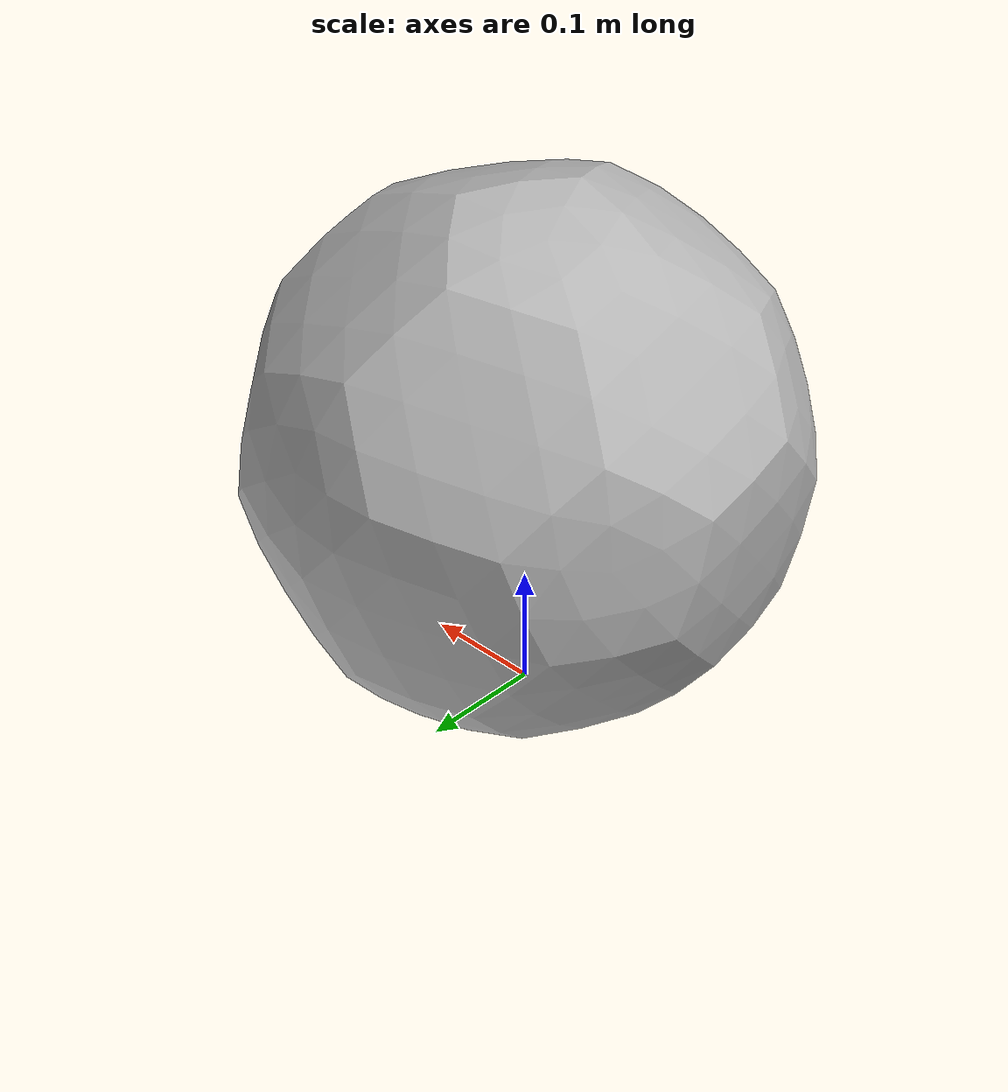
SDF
<?xml version='1.0'?>
<sdf version='1.4'>

<model name='football'>
  <static>false</static>
  <link name='ball'>
    <pose>0 0 0.22 0 0 0</pose>

    <inertial>
      <mass>0.43</mass>
      <inertia>
        <ixx>0.0021</ixx>
        <iyy>0.0021</iyy>
        <izz>0.0021</izz>
        <ixy>0</ixy>
        <ixz>0</ixz>
        <iyz>0</iyz>
      </inertia>
    </inertial>

    <collision name='collision'>
      <geometry>
        <sphere>
          <radius>0.22</radius>
        </sphere>
      </geometry>
      <surface>
        <bounce>
          <restitution_coefficient>0.6</restitution_coefficient>
        </bounce>
        <friction>
          <ode>
            <mu>0.3</mu>
            <mu2>0.3</mu2>
          </ode>
        </friction>
      </surface>
    </collision>

    <visual name='visual'>
      <geometry>
        <mesh>
          <scale>0.22 0.22 0.22</scale>
          <uri>model://robocup_3Dsim_ball/meshes/ball.dae</uri>
        </mesh>
      </geometry>
    </visual>

    <velocity_decay>
      <linear>0.02</linear>
      <angular>0.02</angular>
    </velocity_decay>

    <gravity>true</gravity>

  </link>
</model>
</sdf>
